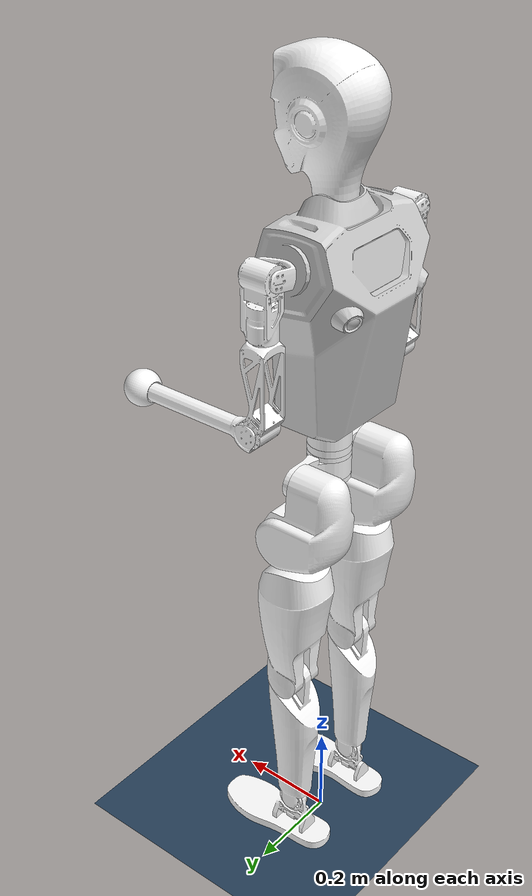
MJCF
<mujoco model="x2 scene">
  <include file="x2_feetonly.xml"/>

  <statistic center="1.0 0.7 1.0" extent="0.8"/>

  <visual>
    <headlight diffuse="0.6 0.6 0.6" ambient="0.1 0.1 0.1" specular="0.9 0.9 0.9"/>
    <rgba haze="0.15 0.25 0.35 1"/>
    <global azimuth="-140" elevation="-20"/>
  </visual>

  <asset>
    <texture type="skybox" builtin="flat" rgb1="0 0 0" rgb2="0 0 0" width="512" height="3072"/>
    <texture type="2d" name="groundplane" builtin="checker" mark="edge" rgb1="0.2 0.3 0.4" rgb2="0.1 0.2 0.3" markrgb="0.8 0.8 0.8" width="300" height="300"/>
    <material name="groundplane" texture="groundplane" texuniform="true" texrepeat="5 5" reflectance="0.2"/>
  </asset>

  <worldbody>
    <light pos="1 0 3.5" dir="0 0 -1" directional="true"/>
    <geom name="floor" size="0 0 0.05" type="plane" material="groundplane"/>
  </worldbody>

  <keyframe>
    <key name="home"
      qpos="
    0 0 0.91
    1 0 0 0
    0.0 0.0 0.0 0.0 0.0
    0.0 0.0 0.0 0.0 0.0"
      ctrl="
    0.0 0.0 0.0 0.0 0.0
    0.0 0.0 0.0 0.0 0.0"/>
  </keyframe>
</mujoco>

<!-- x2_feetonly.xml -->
<mujoco model="x2">
  <compiler angle="radian"/>
  <default>
    <joint damping="0.1" armature="0.01" frictionloss="0.01" actuatorfrcrange="-60 60"/>
    <default class="humanoid">
      <default class="collision">
        <geom group="3" contype="1" conaffinity="1" />
      </default>
      <default class="visual">
        <geom contype="0" conaffinity="0" group="2" />
      </default>
      <site size="0.01" rgba="1 0 0 1" group="4"/>
    </default>
  </default>
  <option iterations="3" ls_iterations="5" timestep="0.002" integrator="Euler">
    <flag eulerdamp="disable"/> <!-- this is not the reason for too much memory-->
  </option>
  <asset>
    <mesh name="pelvis_link" file="meshes/pelvis_link.STL"/>
    <mesh name="L_hip_yaw_link" file="meshes/L_hip_yaw_link.STL"/>
    <mesh name="L_hip_roll_link" file="meshes/L_hip_roll_link.STL"/>
    <mesh name="L_hip_pitch_link" file="meshes/L_hip_pitch_link.STL"/>
    <mesh name="L_knee_pitch_link" file="meshes/L_knee_pitch_link.STL"/>
    <mesh name="L_ankle_pitch_link" file="meshes/L_ankle_pitch_link.STL"/>
    <mesh name="R_hip_yaw_link" file="meshes/R_hip_yaw_link.STL"/>
    <mesh name="R_hip_roll_link" file="meshes/R_hip_roll_link.STL"/>
    <mesh name="R_hip_pitch_link" file="meshes/R_hip_pitch_link.STL"/>
    <mesh name="R_knee_pitch_link" file="meshes/R_knee_pitch_link.STL"/>
    <mesh name="R_ankle_pitch_link" file="meshes/R_ankle_pitch_link.STL"/>
    <mesh name="waist_yaw_link" file="meshes/waist_yaw_link.STL"/>
    <mesh name="torso_link" file="meshes/torso_link.STL"/>
    <mesh name="logo_link" file="meshes/logo_link.STL"/>
    <mesh name="head_link" file="meshes/head_link.STL"/>
    <mesh name="L_shoulder_pitch_link" file="meshes/L_shoulder_pitch_link.STL"/>
    <mesh name="L_shoulder_roll_link" file="meshes/L_shoulder_roll_link.STL"/>
    <mesh name="L_shoulder_yaw_link" file="meshes/L_shoulder_yaw_link.STL"/>
    <mesh name="L_elbow_pitch_link" file="meshes/L_elbow_pitch_link.STL"/>
    <mesh name="R_shoulder_pitch_link" file="meshes/R_shoulder_pitch_link.STL"/>
    <mesh name="R_shoulder_roll_link" file="meshes/R_shoulder_roll_link.STL"/>
    <mesh name="R_shoulder_yaw_link" file="meshes/R_shoulder_yaw_link.STL"/>
    <mesh name="R_elbow_pitch_link" file="meshes/R_elbow_pitch_link.STL"/>
  </asset>
  <worldbody>
    <light name="spotlight" target="pelvis_link" pos="0 0 2" dir="0 0 -1." cutoff="30" mode="targetbodycom"/>
    <body name="pelvis_link" pos="0 0 0.91" childclass="humanoid">
      <joint name="pelvis_link" type="free" limited="false" actuatorfrclimited="false"/>
      <camera name="front" pos="1.210 -0.435 0.32" xyaxes="0.342 0.940 0.000 -0.321 0.117 0.940" mode="trackcom"/>
      <camera name="track" pos="1.35 -1.70 0.5" xyaxes="0.814 0.580 0.000 -0.140 0.196 0.971" mode="trackcom"/>
      <site name="imu"/>
      <inertial pos="-0.000780925 -1.61312e-05 0.320098" quat="0.999982 -6.6303e-05 0.00594371 0.000195653" mass="14.8692" diaginertia="0.548526 0.426111 0.226041"/>
      <geom type="mesh" rgba="1 1 1 1" mesh="pelvis_link" class="visual"/>
      <geom pos="0 0 0.08375" type="mesh" rgba="1 1 1 1" mesh="waist_yaw_link" class="visual"/>
      <geom pos="0 0 0.1205"  type="mesh" rgba="0.823529 0.823529 0.823529 1" mesh="torso_link" class="visual"/>
      <geom pos="0 0 0.1205"  type="mesh" rgba="1 0 0 1" mesh="logo_link" class="visual"/>
      <geom pos="0 0 0.485"   type="mesh" rgba="1 1 1 1" mesh="head_link" class="visual"/>
      <geom pos="-0.01 0.144770 0.43584" quat="0.996195 0.0871543 0 0" type="mesh" rgba="1 1 1 1" mesh="L_shoulder_pitch_link" class="visual"/>
      <geom pos="-0.01 0.204843 0.446432" type="mesh" rgba="1 1 1 1" mesh="L_shoulder_roll_link" class="visual"/>
      <geom pos="-0.01 0.204843 0.334432" type="mesh" rgba="1 1 1 1" mesh="L_shoulder_yaw_link" class="visual"/>
      <geom pos="0 0.204843 0.161432" quat="0.707388 0 -0.706825 0" type="mesh" rgba="1 1 1 1" mesh="L_elbow_pitch_link" class="visual"/>
      <geom pos="-0.01 -0.14477 0.43584" quat="0.996195 -0.0871543 0 0" type="mesh" rgba="1 1 1 1" mesh="R_shoulder_pitch_link" class="visual"/>
      <geom pos="-0.01 -0.204843 0.446432" type="mesh" rgba="1 1 1 1" mesh="R_shoulder_roll_link" class="visual"/>
      <geom pos="-0.010039 -0.204843 0.334432" type="mesh" rgba="1 1 1 1" mesh="R_shoulder_yaw_link" class="visual"/>
      <geom pos="3.6e-08 -0.204843 0.161432" quat="0.707388 0 -0.706825 0" type="mesh" rgba="1 1 1 1" mesh="R_elbow_pitch_link" class="visual"/>
      <body name="L_hip_yaw_link">
        <inertial pos="-0.0005618 0.019831 0.00885104" quat="0.416547 0.491409 -0.566922 0.513426" mass="0.841" diaginertia="0.00175713 0.00175343 0.000573392"/>
        <joint name="L_hip_yaw" pos="0 0 0" axis="0 0 1" range="-0.7854 0.7854" actuatorfrcrange="-30 30" damping="4"/>
        <geom type="mesh" rgba="1 1 1 1" mesh="L_hip_yaw_link" class="visual"/>
        <body name="L_hip_roll_link" pos="-0.0095 0.1 0">
          <inertial pos="-0.0324725 0.00017925 -0.0726484" quat="0.655395 -0.252501 -0.247695 0.667344" mass="2.667" diaginertia="0.0108627 0.0094793 0.00603247"/>
          <joint name="L_hip_roll" pos="0 0 0" axis="1 0 0" range="-0.349 0.524" actuatorfrcrange="-45 45" damping="5"/>
          <geom type="mesh" rgba="1 1 1 1" mesh="L_hip_roll_link" class="visual"/>
          <body name="L_hip_pitch_link" pos="0.0085 -0.001 -0.11">
            <inertial pos="0.00382921 0 -0.185484" quat="0.706562 0.0278169 0.0278188 0.706557" mass="1.664" diaginertia="0.0148443 0.0145077 0.0030868"/>
            <joint name="L_hip_pitch" pos="0 0 0" axis="0 -1 0" range="-0.526 2.4434" actuatorfrcrange="-45 45" damping="5"/>
            <geom type="mesh" rgba="1 1 1 1" mesh="L_hip_pitch_link" class="visual"/>
            <body name="L_knee_pitch_link" pos="0 0 -0.35">
              <inertial pos="0.00140265 0 -0.15876" quat="0.706958 -0.0143173 -0.0143148 0.706965" mass="1.125" diaginertia="0.00999859 0.00987345 0.00100926"/>
              <joint name="L_knee_pitch" pos="0 0 0" axis="0 -1 0" range="-2.3561 0" actuatorfrcrange="-60 60" damping="5"/>
              <geom type="mesh" rgba="1 1 1 1" mesh="L_knee_pitch_link" class="visual"/>
              <body name="L_ankle_pitch_link" pos="0 0 -0.35">
                <inertial pos="0.0393988 -0.000237278 -0.0784143" quat="0.92388 0 0.382683 0" mass="0.556154" diaginertia="0.01 0.01 0.01"/>

                <joint name="L_ankle_pitch" pos="0 0 0" axis="0 -1 0" range="-1.2217 1.2217" actuatorfrcrange="-30 30" damping="1"/>
                <geom type="mesh" rgba="1 1 1 1" mesh="L_ankle_pitch_link" class="visual"/>
                <geom type="box" name="l_foot00" size="0.14 0.039 0.005" pos="0.023 0 -0.095" rgba="1 0 0 1" class="collision"/>

                <site name="l_foot" pos="0 0 -0.095" />
              </body>
            </body>
          </body>
        </body>
      </body>
      <body name="R_hip_yaw_link">
        <inertial pos="-0.00116447 -0.0404495 0" quat="0.707002 0.707002 -0.0121739 -0.0121739" mass="0.219202" diaginertia="0.000598763 0.000555362 0.000156982"/>
        <joint name="R_hip_yaw" pos="0 0 0" axis="0 0 -1" range="-0.7854 0.7854" actuatorfrcrange="-30 30" damping="4"/>
        <geom type="mesh" rgba="1 1 1 1" mesh="R_hip_yaw_link" class="visual"/>
        <body name="R_hip_roll_link" pos="-0.0095 -0.1 0">
          <inertial pos="-0.0324725 0.00017925 -0.0726484" quat="0.655395 -0.252501 -0.247695 0.667344" mass="2.667" diaginertia="0.0108627 0.0094793 0.00603247"/>
          <joint name="R_hip_roll" pos="0 0 0" axis="-1 0 0" range="-0.349 0.524" actuatorfrcrange="-45 45" damping="5"/>
          <geom type="mesh" rgba="1 1 1 1" mesh="R_hip_roll_link" class="visual"/>
          <body name="R_hip_pitch_link" pos="0.0085 -0.001 -0.11">
            <inertial pos="0.00382921 0 -0.185485" quat="0.706557 0.0278188 0.0278169 0.706562" mass="1.664" diaginertia="0.0148443 0.0145077 0.0030868"/>
            <joint name="R_hip_pitch" pos="0 0 0" axis="0 -1 0" range="-0.526 2.4434" actuatorfrcrange="-45 45" damping="5"/>
            <geom type="mesh" rgba="1 1 1 1" mesh="R_hip_pitch_link" class="visual"/>
            <body name="R_knee_pitch_link" pos="0 0 -0.35">
              <inertial pos="0.00140265 0 -0.15876" quat="0.706965 -0.0143148 -0.0143173 0.706958" mass="1.125" diaginertia="0.00999859 0.00987345 0.00100926"/>
              <joint name="R_knee_pitch" pos="0 0 0" axis="0 -1 0" range="-2.3561 0" actuatorfrcrange="-60 60" damping="5"/>
              <geom type="mesh" rgba="1 1 1 1" mesh="R_knee_pitch_link" class="visual"/>
              <body name="R_ankle_pitch_link" pos="0 0 -0.35">
                <inertial pos="0.0393998 0.00023708 -0.0784145" quat="0.92388 0 0.382683 0" mass="0.556161" diaginertia="0.01 0.01 0.01"/>
                <joint name="R_ankle_pitch" pos="0 0 0" axis="0 -1 0" range="-1.2217 1.2217" actuatorfrcrange="-30 30" damping="1"/>
                <geom type="mesh" rgba="1 1 1 1" mesh="R_ankle_pitch_link" class="visual"/>
                <geom type="box" name="r_foot00" size="0.14 0.039 0.005" pos="0.023 0 -0.095" rgba="1 0 0 1" class="collision"/>

                <site name="r_foot" pos="0 0 -0.095" />
              </body>
            </body>
          </body>
        </body>
      </body>
    </body>
  </worldbody>
  <actuator>
    <position name="juL" joint="L_hip_yaw"       kp="160" kv="0"/> <!-- Leg Left -->
    <position name="jsL" joint="L_hip_roll"      kp="200" kv="0"/>
    <position name="jhL" joint="L_hip_pitch"     kp="200" kv="0"/>
    <position name="jkL" joint="L_knee_pitch"    kp="200" kv="0"/>
    <position name="jpL" joint="L_ankle_pitch"   kp="30"  kv="0"/>

    <position name="juR" joint="R_hip_yaw"       kp="160" kv="0"/> <!-- Leg Right -->
    <position name="jsR" joint="R_hip_roll"      kp="200" kv="0"/>
    <position name="jhR" joint="R_hip_pitch"     kp="200" kv="0"/>
    <position name="jkR" joint="R_knee_pitch"    kp="200" kv="0"/>
    <position name="jpR" joint="R_ankle_pitch"   kp="30"  kv="0"/>
  </actuator>
  <sensor>
    <gyro site="imu" name="gyro"/>
    <velocimeter site="imu" name="local_linvel"/>
    <accelerometer site="imu" name="accelerometer"/>
    <framezaxis objtype="site" objname="imu" name="upvector"/>
    <framexaxis objtype="site" objname="imu" name="forwardvector"/>
    <framelinvel objtype="site" objname="imu" name="global_linvel"/>
    <frameangvel objtype="site" objname="imu" name="global_angvel"/>
    <framepos objtype="site" objname="imu" name="position"/>
    <framequat objtype="site" objname="imu" name="orientation"/>
    <framelinvel objtype="site" objname="l_foot" name="l_foot_global_linvel"/>
    <framelinvel objtype="site" objname="r_foot" name="r_foot_global_linvel"/>
    <framexaxis objtype="site" objname="l_foot" name="l_foot_upvector"/>
    <framexaxis objtype="site" objname="r_foot" name="r_foot_upvector"/>
    <framepos objtype="site" objname="l_foot" name="l_foot_pos"/>
    <framepos objtype="site" objname="r_foot" name="r_foot_pos"/>
  </sensor>
</mujoco>
